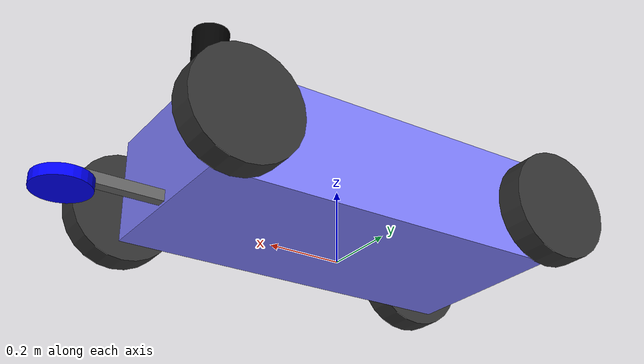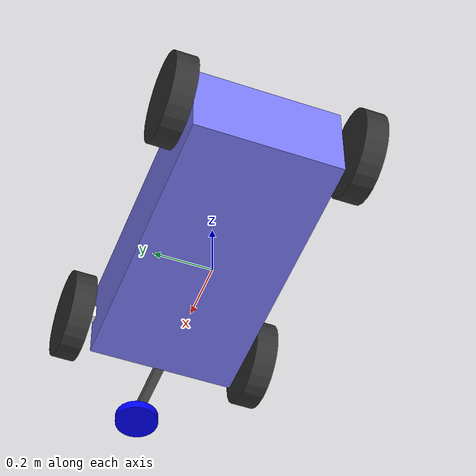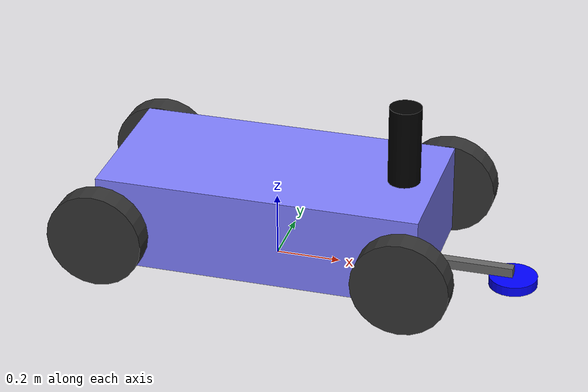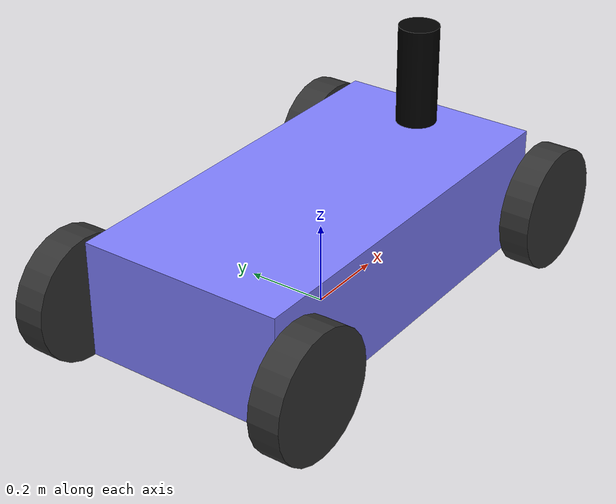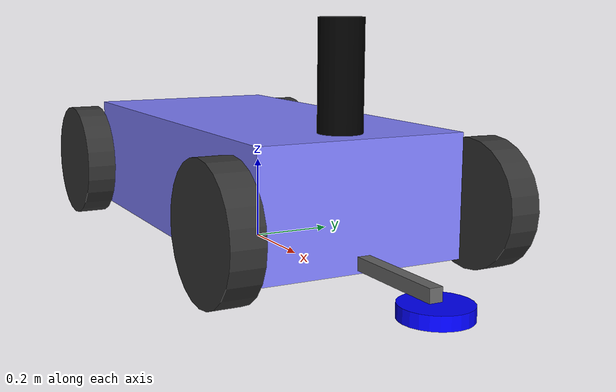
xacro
<?xml version="1.0" ?>
<robot name="robot" xmlns:xacro="http://ros.org/wiki/xacro">

  <!-- base_link -->
  <link name="base_footprint"/>

  <link name="base_link">
    <visual>
      <origin xyz="0 0 0" rpy="0 0 0"/>
      <geometry>
         <box size="1.00571 0.5 0.284363"/>
      </geometry>
      <material name="blue">
        <color rgba="0.5 0.5 1.0 1"/>
      </material>
    </visual>
    <collision>
      <origin xyz="0 0 0" rpy="0 0 0"/>
      <geometry>
         <box size="1.00571 0.5 0.284363"/>
      </geometry>
    </collision>
    <inertial>
      <origin xyz="0 0 0" rpy="0 0 0"/>
      <mass value="20.14395"/>
      <inertia ixx="0.975" ixy="0" ixz="0"
         iyy="1.5"   iyz="0"
         izz="1.875"/>
    </inertial>
  </link>

  <joint name="base_joint" type="fixed">
    <origin xyz="0.0 0.0 0.1713" rpy="0.0 0.0 0.0"/>
    <parent link="base_footprint"/>
    <child link="base_link"/>
  </joint>

  <!-- Steering links -->
  <link name="front_left_wheel_steering_link">
    <visual>
      <origin xyz="0 0 0" rpy="0 0 0"/>
      <geometry>
         <cylinder length="0.05" radius="0.015"/>
      </geometry>
      <material name="white">
        <color rgba="1 1 1 1"/>
      </material>
    </visual>
    <inertial>
      <origin xyz="0 0 0" rpy="0 0 0"/>
      <mass value="0.5"/>
      <inertia ixx="7.2593E-07" ixy="4.1844E-21" ixz="-6.4509E-22" iyy="4.2983E-07" iyz="1.0174E-21" izz="7.4729E-07"/>
    </inertial>
  </link>

  <link name="front_right_wheel_steering_link">
    <visual>
      <geometry>
         <cylinder length="0.05" radius="0.015"/>
      </geometry>
      <material name="white">
        <color rgba="1 1 1 1"/>
      </material>
    </visual>
    <inertial>
      <mass value="0.5"/>
      <inertia ixx="7.2593E-07" ixy="4.1844E-21" ixz="-6.4509E-22" iyy="4.2983E-07" iyz="1.0174E-21" izz="7.4729E-07"/>
    </inertial>
  </link>

  <!-- Wheels -->
  <link name="front_left_wheel">
    <visual>
      <geometry>
         <cylinder radius="0.15" length="0.075"/>
      </geometry>
      <material name="black">
        <color rgba="0.2 0.2 0.2 1"/>
      </material>
    </visual>
    <collision>
      <geometry>
         <cylinder radius="0.15" length="0.075"/>
      </geometry>
    </collision>
    <inertial>
      <mass value="2"/>
      <inertia ixx="0.0010103" ixy="0" ixz="-2.5358E-36" iyy="0.0019302" iyz="2.351E-36" izz="0.0010103"/>
    </inertial>
  </link>

  <link name="front_right_wheel">
    <visual>
      <geometry>
         <cylinder radius="0.15" length="0.075"/>
      </geometry>
      <material name="black">
        <color rgba="0.2 0.2 0.2 1"/>
      </material>
    </visual>
    <collision>
      <geometry>
         <cylinder radius="0.15" length="0.075"/>
      </geometry>
    </collision>
    <inertial>
      <mass value="2"/>
      <inertia ixx="0.0010103" ixy="0" ixz="-2.5358E-36" iyy="0.0019302" iyz="2.351E-36" izz="0.0010103"/>
    </inertial>
  </link>

    <joint name="front_left_wheel_steering_joint" type="revolute">
    <parent link="base_link"/>
    <child link="front_left_wheel_steering_link"/>
      <origin xyz="0.475 0.25 0.01" rpy="0 0 0"/>
    <axis xyz="0 0 1"/>
    <limit lower="-0.43" upper="0.43" effort="100" velocity="1.0"/>
  </joint>

  <joint name="front_right_wheel_steering_joint" type="revolute">
    <parent link="base_link"/>
    <child link="front_right_wheel_steering_link"/>
    <origin xyz="0.475 -0.25 0.01" rpy="0 0 0"/>
    <axis xyz="0 0 1"/>
    <limit lower="-0.43" upper="0.43" effort="100" velocity="1.0"/>
  </joint>

  <joint name="front_left_wheel_joint" type="continuous">
    <parent link="front_left_wheel_steering_link"/>
    <child link="front_left_wheel"/>
    <origin xyz="0.0 0.075 -0.035" rpy="-1.5707 0 0"/>
    <axis xyz="0 0 1"/>
  </joint>

  <joint name="front_right_wheel_joint" type="continuous">
    <parent link="front_right_wheel_steering_link"/>
    <child link="front_right_wheel"/>
    <origin xyz="0.0 -0.075 -0.035" rpy="-1.5707 0 0"/>
    <axis xyz="0 0 1"/>
  </joint>

  <link name="rear_left_wheel">
    <visual>
      <geometry>
         <cylinder radius="0.15" length="0.075"/>
      </geometry>
      <material name="black">
        <color rgba="0.2 0.2 0.2 1"/>
      </material>
    </visual>
    <collision>
      <geometry>
         <cylinder radius="0.15" length="0.075"/>
      </geometry>
    </collision>
    <inertial>
      <mass value="2"/>
      <inertia ixx="0.0010103" ixy="0" ixz="-2.5358E-36" iyy="0.0019302" iyz="2.351E-36" izz="0.0010103"/>
    </inertial>
  </link>

  <link name="rear_right_wheel">
    <visual>
      <geometry>
         <cylinder radius="0.15" length="0.075"/>
      </geometry>
      <material name="black">
        <color rgba="0.2 0.2 0.2 1"/>
      </material>
    </visual>
    <collision>
      <geometry>
         <cylinder radius="0.15" length="0.075"/>
      </geometry>
    </collision>
    <inertial>
      <mass value="2"/>
      <inertia ixx="0.0010103" ixy="0" ixz="-2.5358E-36" iyy="0.0019302" iyz="2.351E-36" izz="0.0010103"/>
    </inertial>
  </link>

    <joint name="rear_left_wheel_joint" type="continuous">
        <parent link="base_link"/>
        <child link="rear_left_wheel"/>
        <origin xyz="-0.478569 0.3125145 -0.0175" rpy="-1.5707 0 0"/>
        <axis xyz="0 0 1"/>
    </joint>

  <joint name="rear_right_wheel_joint" type="continuous">
    <parent link="base_link"/>
    <child link="rear_right_wheel"/>
    <origin xyz="-0.478569 -0.3125145 -0.0175" rpy="-1.5707 0 0"/>
    <axis xyz="0 0 1"/>
  </joint>

  <!-- Sensors -->
  <link name="lidar_link">
        <inertial>
            <origin xyz="0.0 0.0 0.0" rpy="0.0 0.0 0.0"/>
            <mass value="0.05"/>
            <inertia ixx="0.001" ixy="0.0" ixz="0.0" iyy="0.001" iyz="0.0" izz="0.001"/>
        </inertial>
        <visual>
            <origin xyz="0.0 0.0 0.0" rpy="0.0 0.0 0.0"/>
            <geometry>
                 <cylinder radius="0.075" length="0.03"/>
            </geometry>
            <material name="lidar_blue">
                 <color rgba="0.0 0.0 1.0 1"/>
            </material>
        </visual>
        <collision>
            <origin xyz="0.0 0.0 0.0" rpy="0.0 0.0 0.0"/>
            <geometry>
                <cylinder radius="0.075" length="0.03"/>
            </geometry>
        </collision>
    </link>

    <link name="lidar_mount_link">
        <inertial>
            <origin xyz="0.0 0.0 0.0" rpy="0.0 0.0 0.0"/>
            <mass value="0.1"/>
            <inertia ixx="0.001" ixy="0.0" ixz="0.0" iyy="0.001" iyz="0.0" izz="0.001"/>
        </inertial>
        <visual>
            <origin xyz="0.125 0.0 0.0" rpy="0.0 0.0 0.0"/>
            <geometry>
                <box size="0.25 0.03 0.03"/>
            </geometry>
            <material name="mount_gray">
                <color rgba="0.4 0.4 0.4 1"/>
            </material>
        </visual>
        <collision>
            <origin xyz="0.125 0.0 0.0" rpy="0.0 0.0 0.0"/>
            <geometry>
                <box size="0.25 0.03 0.03"/>
            </geometry>
        </collision>
    </link>

    <joint name="lidar_mount_joint" type="fixed">
        <origin xyz="0.5 0.0 -0.12" rpy="0.0 0.0 0.0" />
        <parent link="base_link" />
        <child link="lidar_mount_link" />
    </joint>

    <joint name="lidar_link_joint" type="fixed">
        <origin xyz="0.25 0.0 -0.03" rpy="0.0 0.0 0.0" />
        <parent link="lidar_mount_link" />
        <child link="lidar_link" />
    </joint>

    <link name="camera_link">
        <inertial>
            <origin xyz="0.0 0.0 0.0" rpy="0.0 0.0 0.0"/>
            <mass value="0.05"/>
            <inertia ixx="0.001" ixy="0.0" ixz="0.0" iyy="0.001" iyz="0.0" izz="0.001"/>
        </inertial>
        <visual>
            <origin xyz="0.0 0.0 0.0" rpy="0.0 0.0 0.0"/>
            <geometry>
                <cylinder radius="0.05" length="0.3"/>
            </geometry>
            <material name="camera">
                <color rgba="0.0 0.0 0.0 1"/>
            </material>
        </visual>
        <collision>
            <origin xyz="0.0 0.0 0.0" rpy="0.0 0.0 0.0"/>
            <geometry>
                <cylinder radius="0.03" length="0.04"/>
            </geometry>
        </collision>
    </link>

    <joint name="camera_link_joint" type="fixed">
        <origin xyz="0.4 0.0 0.24" rpy="0.0 0.0 0.0" />
        <parent link="base_link" />
        <child link="camera_link" />
    </joint>

    <xacro:include filename="ackermann.gazebo.xacro" />

</robot>
